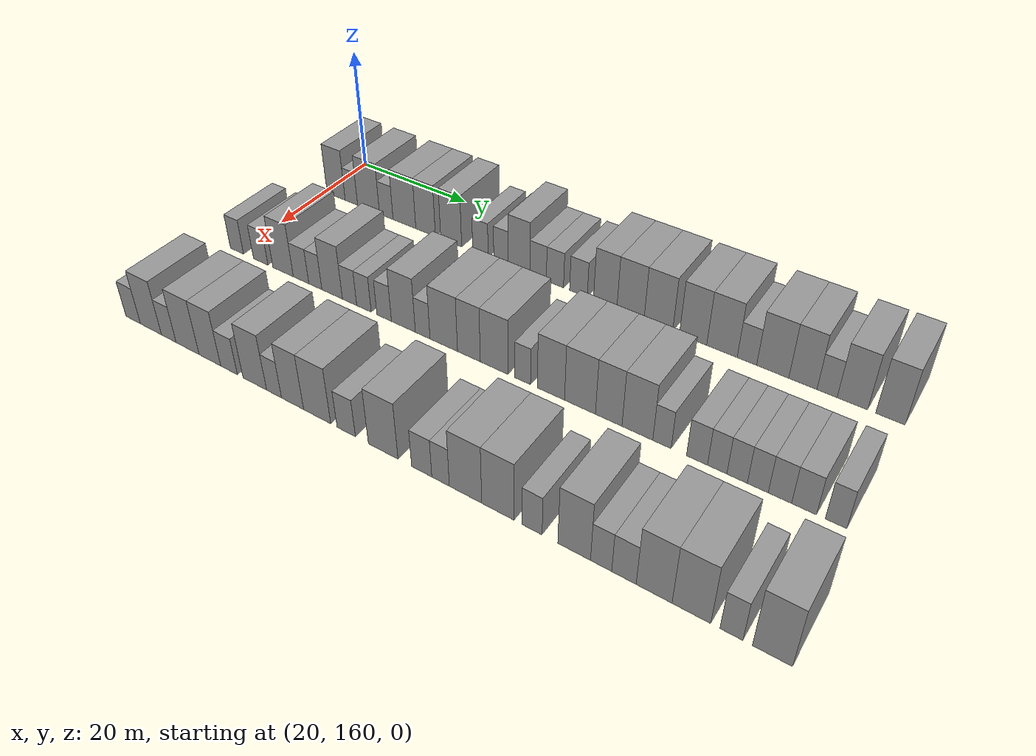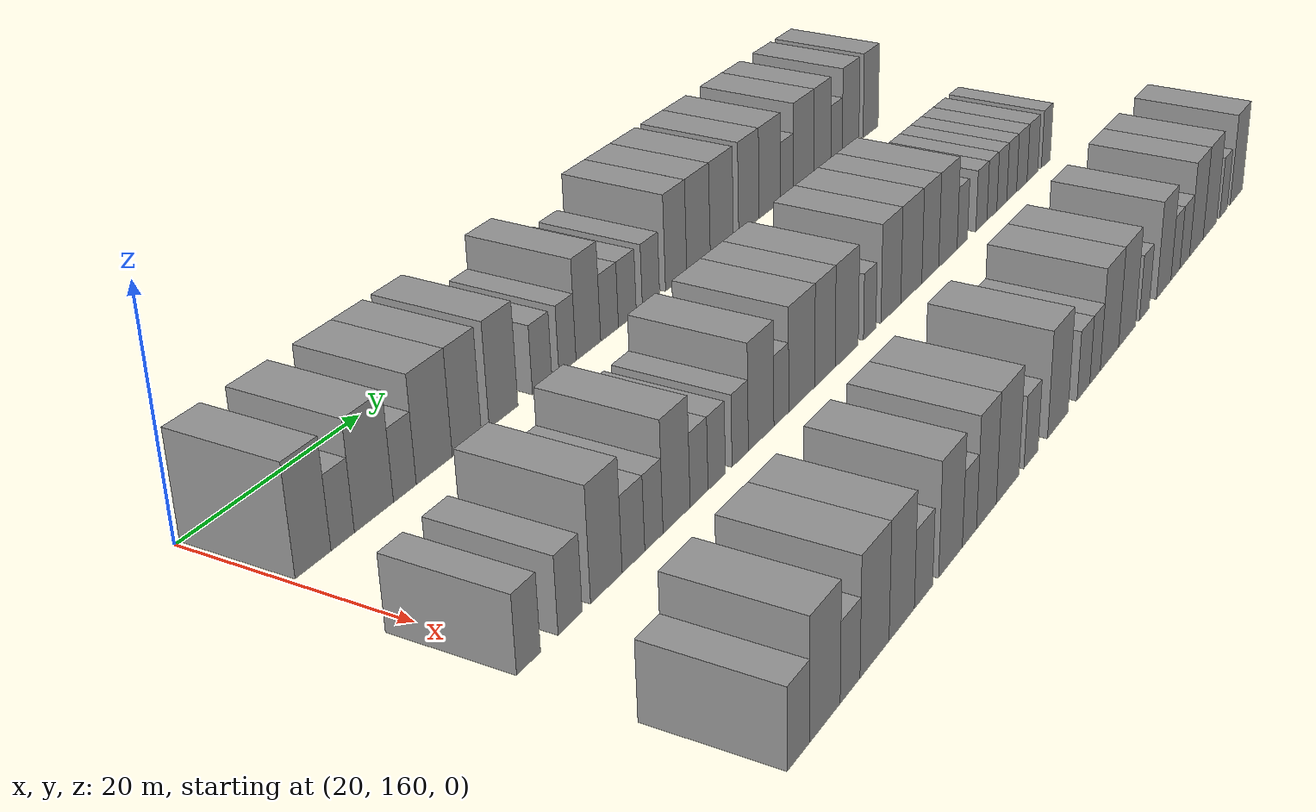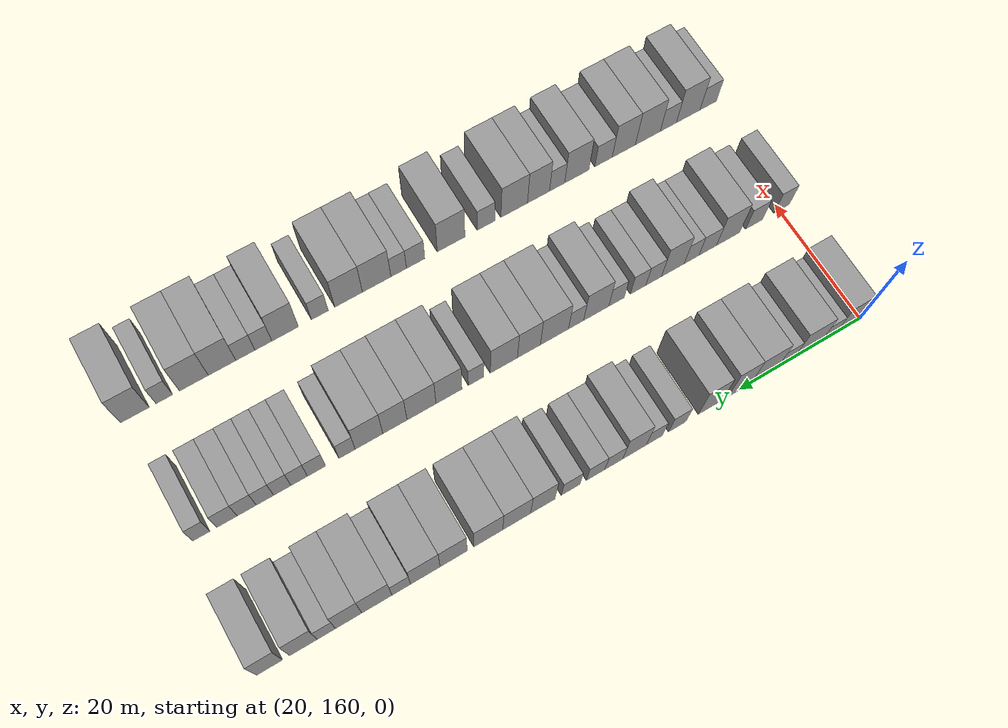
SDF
<sdf version="1.6">
 <world name="default">
  <model name="building_129">
   <static>1</static>
   <pose>25.0000 162.2864 0 0.000000 0.000000 0.000000</pose>
   <link name="link">
    <pose>0 0 4.50 0 0 0</pose>
    <collision name="collision"><geometry><box><size>10.0000 3.7345 9.0000</size></box></geometry></collision>
    <visual name="visual">
     <cast_shadows>0</cast_shadows>
     <geometry><box><size>10.0000 3.7345 9.0000</size></box></geometry>
     <material>
      <script>
       <uri>model://grey_wall/materials/scripts</uri>
       <uri>model://grey_wall/materials/textures</uri>
       <name>vrc/grey_wall</name>
      </script>
     </material>
    </visual>
   </link>
  </model>
  <model name="building_130">
   <static>1</static>
   <pose>25.0000 165.4136 0 0.000000 0.000000 0.000000</pose>
   <link name="link">
    <pose>0 0 3.00 0 0 0</pose>
    <collision name="collision"><geometry><box><size>10.0000 2.5200 6.0000</size></box></geometry></collision>
    <visual name="visual">
     <cast_shadows>0</cast_shadows>
     <geometry><box><size>10.0000 2.5200 6.0000</size></box></geometry>
     <material>
      <script>
       <uri>model://grey_wall/materials/scripts</uri>
       <uri>model://grey_wall/materials/textures</uri>
       <name>vrc/grey_wall</name>
      </script>
     </material>
    </visual>
   </link>
  </model>
  <model name="building_131">
   <static>1</static>
   <pose>25.0000 168.8662 0 0.000000 0.000000 0.000000</pose>
   <link name="link">
    <pose>0 0 4.50 0 0 0</pose>
    <collision name="collision"><geometry><box><size>10.0000 4.3852 9.0000</size></box></geometry></collision>
    <visual name="visual">
     <cast_shadows>0</cast_shadows>
     <geometry><box><size>10.0000 4.3852 9.0000</size></box></geometry>
     <material>
      <script>
       <uri>model://grey_wall/materials/scripts</uri>
       <uri>model://grey_wall/materials/textures</uri>
       <name>vrc/grey_wall</name>
      </script>
     </material>
    </visual>
   </link>
  </model>
  <model name="building_132">
   <static>1</static>
   <pose>25.0000 172.3889 0 0.000000 0.000000 0.000000</pose>
   <link name="link">
    <pose>0 0 3.00 0 0 0</pose>
    <collision name="collision"><geometry><box><size>10.0000 2.6602 6.0000</size></box></geometry></collision>
    <visual name="visual">
     <cast_shadows>0</cast_shadows>
     <geometry><box><size>10.0000 2.6602 6.0000</size></box></geometry>
     <material>
      <script>
       <uri>model://grey_wall/materials/scripts</uri>
       <uri>model://grey_wall/materials/textures</uri>
       <name>vrc/grey_wall</name>
      </script>
     </material>
    </visual>
   </link>
  </model>
  <model name="building_133">
   <static>1</static>
   <pose>25.0000 175.9090 0 0.000000 0.000000 0.000000</pose>
   <link name="link">
    <pose>0 0 4.50 0 0 0</pose>
    <collision name="collision"><geometry><box><size>10.0000 4.3799 9.0000</size></box></geometry></collision>
    <visual name="visual">
     <cast_shadows>0</cast_shadows>
     <geometry><box><size>10.0000 4.3799 9.0000</size></box></geometry>
     <material>
      <script>
       <uri>model://grey_wall/materials/scripts</uri>
       <uri>model://grey_wall/materials/textures</uri>
       <name>vrc/grey_wall</name>
      </script>
     </material>
    </visual>
   </link>
  </model>
  <model name="building_134">
   <static>1</static>
   <pose>25.0000 179.9458 0 0.000000 0.000000 0.000000</pose>
   <link name="link">
    <pose>0 0 4.50 0 0 0</pose>
    <collision name="collision"><geometry><box><size>10.0000 3.6938 9.0000</size></box></geometry></collision>
    <visual name="visual">
     <cast_shadows>0</cast_shadows>
     <geometry><box><size>10.0000 3.6938 9.0000</size></box></geometry>
     <material>
      <script>
       <uri>model://grey_wall/materials/scripts</uri>
       <uri>model://grey_wall/materials/textures</uri>
       <name>vrc/grey_wall</name>
      </script>
     </material>
    </visual>
   </link>
  </model>
  <model name="building_135">
   <static>1</static>
   <pose>25.0000 184.7124 0 0.000000 0.000000 0.000000</pose>
   <link name="link">
    <pose>0 0 4.50 0 0 0</pose>
    <collision name="collision"><geometry><box><size>10.0000 3.8392 9.0000</size></box></geometry></collision>
    <visual name="visual">
     <cast_shadows>0</cast_shadows>
     <geometry><box><size>10.0000 3.8392 9.0000</size></box></geometry>
     <material>
      <script>
       <uri>model://grey_wall/materials/scripts</uri>
       <uri>model://grey_wall/materials/textures</uri>
       <name>vrc/grey_wall</name>
      </script>
     </material>
    </visual>
   </link>
  </model>
  <model name="building_136">
   <static>1</static>
   <pose>25.0000 190.0033 0 0.000000 0.000000 0.000000</pose>
   <link name="link">
    <pose>0 0 3.00 0 0 0</pose>
    <collision name="collision"><geometry><box><size>10.0000 2.7427 6.0000</size></box></geometry></collision>
    <visual name="visual">
     <cast_shadows>0</cast_shadows>
     <geometry><box><size>10.0000 2.7427 6.0000</size></box></geometry>
     <material>
      <script>
       <uri>model://grey_wall/materials/scripts</uri>
       <uri>model://grey_wall/materials/textures</uri>
       <name>vrc/grey_wall</name>
      </script>
     </material>
    </visual>
   </link>
  </model>
  <model name="building_137">
   <static>1</static>
   <pose>25.0000 193.6274 0 0.000000 0.000000 0.000000</pose>
   <link name="link">
    <pose>0 0 3.00 0 0 0</pose>
    <collision name="collision"><geometry><box><size>10.0000 2.5055 6.0000</size></box></geometry></collision>
    <visual name="visual">
     <cast_shadows>0</cast_shadows>
     <geometry><box><size>10.0000 2.5055 6.0000</size></box></geometry>
     <material>
      <script>
       <uri>model://grey_wall/materials/scripts</uri>
       <uri>model://grey_wall/materials/textures</uri>
       <name>vrc/grey_wall</name>
      </script>
     </material>
    </visual>
   </link>
  </model>
  <model name="building_138">
   <static>1</static>
   <pose>25.0000 196.7386 0 0.000000 0.000000 0.000000</pose>
   <link name="link">
    <pose>0 0 4.50 0 0 0</pose>
    <collision name="collision"><geometry><box><size>10.0000 3.7170 9.0000</size></box></geometry></collision>
    <visual name="visual">
     <cast_shadows>0</cast_shadows>
     <geometry><box><size>10.0000 3.7170 9.0000</size></box></geometry>
     <material>
      <script>
       <uri>model://grey_wall/materials/scripts</uri>
       <uri>model://grey_wall/materials/textures</uri>
       <name>vrc/grey_wall</name>
      </script>
     </material>
    </visual>
   </link>
  </model>
  <model name="building_139">
   <static>1</static>
   <pose>25.0000 199.9825 0 0.000000 0.000000 0.000000</pose>
   <link name="link">
    <pose>0 0 3.00 0 0 0</pose>
    <collision name="collision"><geometry><box><size>10.0000 2.7708 6.0000</size></box></geometry></collision>
    <visual name="visual">
     <cast_shadows>0</cast_shadows>
     <geometry><box><size>10.0000 2.7708 6.0000</size></box></geometry>
     <material>
      <script>
       <uri>model://grey_wall/materials/scripts</uri>
       <uri>model://grey_wall/materials/textures</uri>
       <name>vrc/grey_wall</name>
      </script>
     </material>
    </visual>
   </link>
  </model>
  <model name="building_140">
   <static>1</static>
   <pose>25.0000 202.7918 0 0.000000 0.000000 0.000000</pose>
   <link name="link">
    <pose>0 0 3.00 0 0 0</pose>
    <collision name="collision"><geometry><box><size>10.0000 2.8478 6.0000</size></box></geometry></collision>
    <visual name="visual">
     <cast_shadows>0</cast_shadows>
     <geometry><box><size>10.0000 2.8478 6.0000</size></box></geometry>
     <material>
      <script>
       <uri>model://grey_wall/materials/scripts</uri>
       <uri>model://grey_wall/materials/textures</uri>
       <name>vrc/grey_wall</name>
      </script>
     </material>
    </visual>
   </link>
  </model>
  <model name="building_141">
   <static>1</static>
   <pose>25.0000 206.6423 0 0.000000 0.000000 0.000000</pose>
   <link name="link">
    <pose>0 0 3.00 0 0 0</pose>
    <collision name="collision"><geometry><box><size>10.0000 2.8532 6.0000</size></box></geometry></collision>
    <visual name="visual">
     <cast_shadows>0</cast_shadows>
     <geometry><box><size>10.0000 2.8532 6.0000</size></box></geometry>
     <material>
      <script>
       <uri>model://grey_wall/materials/scripts</uri>
       <uri>model://grey_wall/materials/textures</uri>
       <name>vrc/grey_wall</name>
      </script>
     </material>
    </visual>
   </link>
  </model>
  <model name="building_142">
   <static>1</static>
   <pose>25.0000 210.9130 0 0.000000 0.000000 0.000000</pose>
   <link name="link">
    <pose>0 0 4.50 0 0 0</pose>
    <collision name="collision"><geometry><box><size>10.0000 3.6882 9.0000</size></box></geometry></collision>
    <visual name="visual">
     <cast_shadows>0</cast_shadows>
     <geometry><box><size>10.0000 3.6882 9.0000</size></box></geometry>
     <material>
      <script>
       <uri>model://grey_wall/materials/scripts</uri>
       <uri>model://grey_wall/materials/textures</uri>
       <name>vrc/grey_wall</name>
      </script>
     </material>
    </visual>
   </link>
  </model>
  <model name="building_143">
   <static>1</static>
   <pose>25.0000 214.8537 0 0.000000 0.000000 0.000000</pose>
   <link name="link">
    <pose>0 0 4.50 0 0 0</pose>
    <collision name="collision"><geometry><box><size>10.0000 4.1931 9.0000</size></box></geometry></collision>
    <visual name="visual">
     <cast_shadows>0</cast_shadows>
     <geometry><box><size>10.0000 4.1931 9.0000</size></box></geometry>
     <material>
      <script>
       <uri>model://grey_wall/materials/scripts</uri>
       <uri>model://grey_wall/materials/textures</uri>
       <name>vrc/grey_wall</name>
      </script>
     </material>
    </visual>
   </link>
  </model>
  <model name="building_144">
   <static>1</static>
   <pose>25.0000 219.1016 0 0.000000 0.000000 0.000000</pose>
   <link name="link">
    <pose>0 0 4.50 0 0 0</pose>
    <collision name="collision"><geometry><box><size>10.0000 4.3026 9.0000</size></box></geometry></collision>
    <visual name="visual">
     <cast_shadows>0</cast_shadows>
     <geometry><box><size>10.0000 4.3026 9.0000</size></box></geometry>
     <material>
      <script>
       <uri>model://grey_wall/materials/scripts</uri>
       <uri>model://grey_wall/materials/textures</uri>
       <name>vrc/grey_wall</name>
      </script>
     </material>
    </visual>
   </link>
  </model>
  <model name="building_145">
   <static>1</static>
   <pose>25.0000 224.2383 0 0.000000 0.000000 0.000000</pose>
   <link name="link">
    <pose>0 0 4.50 0 0 0</pose>
    <collision name="collision"><geometry><box><size>10.0000 3.9708 9.0000</size></box></geometry></collision>
    <visual name="visual">
     <cast_shadows>0</cast_shadows>
     <geometry><box><size>10.0000 3.9708 9.0000</size></box></geometry>
     <material>
      <script>
       <uri>model://grey_wall/materials/scripts</uri>
       <uri>model://grey_wall/materials/textures</uri>
       <name>vrc/grey_wall</name>
      </script>
     </material>
    </visual>
   </link>
  </model>
  <model name="building_146">
   <static>1</static>
   <pose>25.0000 228.3854 0 0.000000 0.000000 0.000000</pose>
   <link name="link">
    <pose>0 0 4.50 0 0 0</pose>
    <collision name="collision"><geometry><box><size>10.0000 4.3234 9.0000</size></box></geometry></collision>
    <visual name="visual">
     <cast_shadows>0</cast_shadows>
     <geometry><box><size>10.0000 4.3234 9.0000</size></box></geometry>
     <material>
      <script>
       <uri>model://grey_wall/materials/scripts</uri>
       <uri>model://grey_wall/materials/textures</uri>
       <name>vrc/grey_wall</name>
      </script>
     </material>
    </visual>
   </link>
  </model>
  <model name="building_147">
   <static>1</static>
   <pose>25.0000 231.8959 0 0.000000 0.000000 0.000000</pose>
   <link name="link">
    <pose>0 0 3.00 0 0 0</pose>
    <collision name="collision"><geometry><box><size>10.0000 2.6977 6.0000</size></box></geometry></collision>
    <visual name="visual">
     <cast_shadows>0</cast_shadows>
     <geometry><box><size>10.0000 2.6977 6.0000</size></box></geometry>
     <material>
      <script>
       <uri>model://grey_wall/materials/scripts</uri>
       <uri>model://grey_wall/materials/textures</uri>
       <name>vrc/grey_wall</name>
      </script>
     </material>
    </visual>
   </link>
  </model>
  <model name="building_148">
   <static>1</static>
   <pose>25.0000 235.4217 0 0.000000 0.000000 0.000000</pose>
   <link name="link">
    <pose>0 0 4.50 0 0 0</pose>
    <collision name="collision"><geometry><box><size>10.0000 4.3541 9.0000</size></box></geometry></collision>
    <visual name="visual">
     <cast_shadows>0</cast_shadows>
     <geometry><box><size>10.0000 4.3541 9.0000</size></box></geometry>
     <material>
      <script>
       <uri>model://grey_wall/materials/scripts</uri>
       <uri>model://grey_wall/materials/textures</uri>
       <name>vrc/grey_wall</name>
      </script>
     </material>
    </visual>
   </link>
  </model>
  <model name="building_149">
   <static>1</static>
   <pose>25.0000 239.4622 0 0.000000 0.000000 0.000000</pose>
   <link name="link">
    <pose>0 0 4.50 0 0 0</pose>
    <collision name="collision"><geometry><box><size>10.0000 3.7268 9.0000</size></box></geometry></collision>
    <visual name="visual">
     <cast_shadows>0</cast_shadows>
     <geometry><box><size>10.0000 3.7268 9.0000</size></box></geometry>
     <material>
      <script>
       <uri>model://grey_wall/materials/scripts</uri>
       <uri>model://grey_wall/materials/textures</uri>
       <name>vrc/grey_wall</name>
      </script>
     </material>
    </visual>
   </link>
  </model>
  <model name="building_150">
   <static>1</static>
   <pose>25.0000 242.6299 0 0.000000 0.000000 0.000000</pose>
   <link name="link">
    <pose>0 0 3.00 0 0 0</pose>
    <collision name="collision"><geometry><box><size>10.0000 2.6086 6.0000</size></box></geometry></collision>
    <visual name="visual">
     <cast_shadows>0</cast_shadows>
     <geometry><box><size>10.0000 2.6086 6.0000</size></box></geometry>
     <material>
      <script>
       <uri>model://grey_wall/materials/scripts</uri>
       <uri>model://grey_wall/materials/textures</uri>
       <name>vrc/grey_wall</name>
      </script>
     </material>
    </visual>
   </link>
  </model>
  <model name="building_151">
   <static>1</static>
   <pose>25.0000 245.8676 0 0.000000 0.000000 0.000000</pose>
   <link name="link">
    <pose>0 0 4.50 0 0 0</pose>
    <collision name="collision"><geometry><box><size>10.0000 3.8668 9.0000</size></box></geometry></collision>
    <visual name="visual">
     <cast_shadows>0</cast_shadows>
     <geometry><box><size>10.0000 3.8668 9.0000</size></box></geometry>
     <material>
      <script>
       <uri>model://grey_wall/materials/scripts</uri>
       <uri>model://grey_wall/materials/textures</uri>
       <name>vrc/grey_wall</name>
      </script>
     </material>
    </visual>
   </link>
  </model>
  <model name="building_152">
   <static>1</static>
   <pose>25.0000 250.6155 0 0.000000 0.000000 0.000000</pose>
   <link name="link">
    <pose>0 0 4.50 0 0 0</pose>
    <collision name="collision"><geometry><box><size>10.0000 3.6291 9.0000</size></box></geometry></collision>
    <visual name="visual">
     <cast_shadows>0</cast_shadows>
     <geometry><box><size>10.0000 3.6291 9.0000</size></box></geometry>
     <material>
      <script>
       <uri>model://grey_wall/materials/scripts</uri>
       <uri>model://grey_wall/materials/textures</uri>
       <name>vrc/grey_wall</name>
      </script>
     </material>
    </visual>
   </link>
  </model>
  <model name="building_293">
   <static>1</static>
   <pose>44.0000 159.6439 0 0.000000 0.000000 0.000000</pose>
   <link name="link">
    <pose>0 0 3.00 0 0 0</pose>
    <collision name="collision"><geometry><box><size>10.0000 2.6679 6.0000</size></box></geometry></collision>
    <visual name="visual">
     <cast_shadows>0</cast_shadows>
     <geometry><box><size>10.0000 2.6679 6.0000</size></box></geometry>
     <material>
      <script>
       <uri>model://grey_wall/materials/scripts</uri>
       <uri>model://grey_wall/materials/textures</uri>
       <name>vrc/grey_wall</name>
      </script>
     </material>
    </visual>
   </link>
  </model>
  <model name="building_294">
   <static>1</static>
   <pose>44.0000 164.4047 0 0.000000 0.000000 0.000000</pose>
   <link name="link">
    <pose>0 0 3.00 0 0 0</pose>
    <collision name="collision"><geometry><box><size>10.0000 2.8537 6.0000</size></box></geometry></collision>
    <visual name="visual">
     <cast_shadows>0</cast_shadows>
     <geometry><box><size>10.0000 2.8537 6.0000</size></box></geometry>
     <material>
      <script>
       <uri>model://grey_wall/materials/scripts</uri>
       <uri>model://grey_wall/materials/textures</uri>
       <name>vrc/grey_wall</name>
      </script>
     </material>
    </visual>
   </link>
  </model>
  <model name="building_295">
   <static>1</static>
   <pose>44.0000 168.8029 0 0.000000 0.000000 0.000000</pose>
   <link name="link">
    <pose>0 0 4.50 0 0 0</pose>
    <collision name="collision"><geometry><box><size>10.0000 3.9427 9.0000</size></box></geometry></collision>
    <visual name="visual">
     <cast_shadows>0</cast_shadows>
     <geometry><box><size>10.0000 3.9427 9.0000</size></box></geometry>
     <material>
      <script>
       <uri>model://grey_wall/materials/scripts</uri>
       <uri>model://grey_wall/materials/textures</uri>
       <name>vrc/grey_wall</name>
      </script>
     </material>
    </visual>
   </link>
  </model>
  <model name="building_296">
   <static>1</static>
   <pose>44.0000 172.2439 0 0.000000 0.000000 0.000000</pose>
   <link name="link">
    <pose>0 0 3.00 0 0 0</pose>
    <collision name="collision"><geometry><box><size>10.0000 2.9393 6.0000</size></box></geometry></collision>
    <visual name="visual">
     <cast_shadows>0</cast_shadows>
     <geometry><box><size>10.0000 2.9393 6.0000</size></box></geometry>
     <material>
      <script>
       <uri>model://grey_wall/materials/scripts</uri>
       <uri>model://grey_wall/materials/textures</uri>
       <name>vrc/grey_wall</name>
      </script>
     </material>
    </visual>
   </link>
  </model>
  <model name="building_297">
   <static>1</static>
   <pose>44.0000 174.9356 0 0.000000 0.000000 0.000000</pose>
   <link name="link">
    <pose>0 0 3.00 0 0 0</pose>
    <collision name="collision"><geometry><box><size>10.0000 2.4442 6.0000</size></box></geometry></collision>
    <visual name="visual">
     <cast_shadows>0</cast_shadows>
     <geometry><box><size>10.0000 2.4442 6.0000</size></box></geometry>
     <material>
      <script>
       <uri>model://grey_wall/materials/scripts</uri>
       <uri>model://grey_wall/materials/textures</uri>
       <name>vrc/grey_wall</name>
      </script>
     </material>
    </visual>
   </link>
  </model>
  <model name="building_298">
   <static>1</static>
   <pose>44.0000 178.0419 0 0.000000 0.000000 0.000000</pose>
   <link name="link">
    <pose>0 0 4.50 0 0 0</pose>
    <collision name="collision"><geometry><box><size>10.0000 3.7684 9.0000</size></box></geometry></collision>
    <visual name="visual">
     <cast_shadows>0</cast_shadows>
     <geometry><box><size>10.0000 3.7684 9.0000</size></box></geometry>
     <material>
      <script>
       <uri>model://grey_wall/materials/scripts</uri>
       <uri>model://grey_wall/materials/textures</uri>
       <name>vrc/grey_wall</name>
      </script>
     </material>
    </visual>
   </link>
  </model>
  <model name="building_299">
   <static>1</static>
   <pose>44.0000 181.2138 0 0.000000 0.000000 0.000000</pose>
   <link name="link">
    <pose>0 0 3.00 0 0 0</pose>
    <collision name="collision"><geometry><box><size>10.0000 2.5755 6.0000</size></box></geometry></collision>
    <visual name="visual">
     <cast_shadows>0</cast_shadows>
     <geometry><box><size>10.0000 2.5755 6.0000</size></box></geometry>
     <material>
      <script>
       <uri>model://grey_wall/materials/scripts</uri>
       <uri>model://grey_wall/materials/textures</uri>
       <name>vrc/grey_wall</name>
      </script>
     </material>
    </visual>
   </link>
  </model>
  <model name="building_300">
   <static>1</static>
   <pose>44.0000 183.7836 0 0.000000 0.000000 0.000000</pose>
   <link name="link">
    <pose>0 0 3.00 0 0 0</pose>
    <collision name="collision"><geometry><box><size>10.0000 2.5640 6.0000</size></box></geometry></collision>
    <visual name="visual">
     <cast_shadows>0</cast_shadows>
     <geometry><box><size>10.0000 2.5640 6.0000</size></box></geometry>
     <material>
      <script>
       <uri>model://grey_wall/materials/scripts</uri>
       <uri>model://grey_wall/materials/textures</uri>
       <name>vrc/grey_wall</name>
      </script>
     </material>
    </visual>
   </link>
  </model>
  <model name="building_301">
   <static>1</static>
   <pose>44.0000 187.3251 0 0.000000 0.000000 0.000000</pose>
   <link name="link">
    <pose>0 0 3.00 0 0 0</pose>
    <collision name="collision"><geometry><box><size>10.0000 2.5191 6.0000</size></box></geometry></collision>
    <visual name="visual">
     <cast_shadows>0</cast_shadows>
     <geometry><box><size>10.0000 2.5191 6.0000</size></box></geometry>
     <material>
      <script>
       <uri>model://grey_wall/materials/scripts</uri>
       <uri>model://grey_wall/materials/textures</uri>
       <name>vrc/grey_wall</name>
      </script>
     </material>
    </visual>
   </link>
  </model>
  <model name="building_302">
   <static>1</static>
   <pose>44.0000 190.6198 0 0.000000 0.000000 0.000000</pose>
   <link name="link">
    <pose>0 0 4.50 0 0 0</pose>
    <collision name="collision"><geometry><box><size>10.0000 4.0704 9.0000</size></box></geometry></collision>
    <visual name="visual">
     <cast_shadows>0</cast_shadows>
     <geometry><box><size>10.0000 4.0704 9.0000</size></box></geometry>
     <material>
      <script>
       <uri>model://grey_wall/materials/scripts</uri>
       <uri>model://grey_wall/materials/textures</uri>
       <name>vrc/grey_wall</name>
      </script>
     </material>
    </visual>
   </link>
  </model>
  <model name="building_303">
   <static>1</static>
   <pose>44.0000 193.8757 0 0.000000 0.000000 0.000000</pose>
   <link name="link">
    <pose>0 0 3.00 0 0 0</pose>
    <collision name="collision"><geometry><box><size>10.0000 2.4413 6.0000</size></box></geometry></collision>
    <visual name="visual">
     <cast_shadows>0</cast_shadows>
     <geometry><box><size>10.0000 2.4413 6.0000</size></box></geometry>
     <material>
      <script>
       <uri>model://grey_wall/materials/scripts</uri>
       <uri>model://grey_wall/materials/textures</uri>
       <name>vrc/grey_wall</name>
      </script>
     </material>
    </visual>
   </link>
  </model>
  <model name="building_304">
   <static>1</static>
   <pose>44.0000 197.3410 0 0.000000 0.000000 0.000000</pose>
   <link name="link">
    <pose>0 0 4.50 0 0 0</pose>
    <collision name="collision"><geometry><box><size>10.0000 4.4893 9.0000</size></box></geometry></collision>
    <visual name="visual">
     <cast_shadows>0</cast_shadows>
     <geometry><box><size>10.0000 4.4893 9.0000</size></box></geometry>
     <material>
      <script>
       <uri>model://grey_wall/materials/scripts</uri>
       <uri>model://grey_wall/materials/textures</uri>
       <name>vrc/grey_wall</name>
      </script>
     </material>
    </visual>
   </link>
  </model>
  <model name="building_305">
   <static>1</static>
   <pose>44.0000 201.3980 0 0.000000 0.000000 0.000000</pose>
   <link name="link">
    <pose>0 0 4.50 0 0 0</pose>
    <collision name="collision"><geometry><box><size>10.0000 3.6245 9.0000</size></box></geometry></collision>
    <visual name="visual">
     <cast_shadows>0</cast_shadows>
     <geometry><box><size>10.0000 3.6245 9.0000</size></box></geometry>
     <material>
      <script>
       <uri>model://grey_wall/materials/scripts</uri>
       <uri>model://grey_wall/materials/textures</uri>
       <name>vrc/grey_wall</name>
      </script>
     </material>
    </visual>
   </link>
  </model>
  <model name="building_306">
   <static>1</static>
   <pose>44.0000 205.3498 0 0.000000 0.000000 0.000000</pose>
   <link name="link">
    <pose>0 0 4.50 0 0 0</pose>
    <collision name="collision"><geometry><box><size>10.0000 4.2791 9.0000</size></box></geometry></collision>
    <visual name="visual">
     <cast_shadows>0</cast_shadows>
     <geometry><box><size>10.0000 4.2791 9.0000</size></box></geometry>
     <material>
      <script>
       <uri>model://grey_wall/materials/scripts</uri>
       <uri>model://grey_wall/materials/textures</uri>
       <name>vrc/grey_wall</name>
      </script>
     </material>
    </visual>
   </link>
  </model>
  <model name="building_307">
   <static>1</static>
   <pose>44.0000 209.6932 0 0.000000 0.000000 0.000000</pose>
   <link name="link">
    <pose>0 0 3.00 0 0 0</pose>
    <collision name="collision"><geometry><box><size>10.0000 2.4078 6.0000</size></box></geometry></collision>
    <visual name="visual">
     <cast_shadows>0</cast_shadows>
     <geometry><box><size>10.0000 2.4078 6.0000</size></box></geometry>
     <material>
      <script>
       <uri>model://grey_wall/materials/scripts</uri>
       <uri>model://grey_wall/materials/textures</uri>
       <name>vrc/grey_wall</name>
      </script>
     </material>
    </visual>
   </link>
  </model>
  <model name="building_308">
   <static>1</static>
   <pose>44.0000 213.8956 0 0.000000 0.000000 0.000000</pose>
   <link name="link">
    <pose>0 0 4.50 0 0 0</pose>
    <collision name="collision"><geometry><box><size>10.0000 3.9969 9.0000</size></box></geometry></collision>
    <visual name="visual">
     <cast_shadows>0</cast_shadows>
     <geometry><box><size>10.0000 3.9969 9.0000</size></box></geometry>
     <material>
      <script>
       <uri>model://grey_wall/materials/scripts</uri>
       <uri>model://grey_wall/materials/textures</uri>
       <name>vrc/grey_wall</name>
      </script>
     </material>
    </visual>
   </link>
  </model>
  <model name="building_309">
   <static>1</static>
   <pose>44.0000 218.1007 0 0.000000 0.000000 0.000000</pose>
   <link name="link">
    <pose>0 0 4.50 0 0 0</pose>
    <collision name="collision"><geometry><box><size>10.0000 4.4133 9.0000</size></box></geometry></collision>
    <visual name="visual">
     <cast_shadows>0</cast_shadows>
     <geometry><box><size>10.0000 4.4133 9.0000</size></box></geometry>
     <material>
      <script>
       <uri>model://grey_wall/materials/scripts</uri>
       <uri>model://grey_wall/materials/textures</uri>
       <name>vrc/grey_wall</name>
      </script>
     </material>
    </visual>
   </link>
  </model>
  <model name="building_310">
   <static>1</static>
   <pose>44.0000 222.1472 0 0.000000 0.000000 0.000000</pose>
   <link name="link">
    <pose>0 0 4.50 0 0 0</pose>
    <collision name="collision"><geometry><box><size>10.0000 3.6796 9.0000</size></box></geometry></collision>
    <visual name="visual">
     <cast_shadows>0</cast_shadows>
     <geometry><box><size>10.0000 3.6796 9.0000</size></box></geometry>
     <material>
      <script>
       <uri>model://grey_wall/materials/scripts</uri>
       <uri>model://grey_wall/materials/textures</uri>
       <name>vrc/grey_wall</name>
      </script>
     </material>
    </visual>
   </link>
  </model>
  <model name="building_311">
   <static>1</static>
   <pose>44.0000 226.0698 0 0.000000 0.000000 0.000000</pose>
   <link name="link">
    <pose>0 0 4.50 0 0 0</pose>
    <collision name="collision"><geometry><box><size>10.0000 4.1657 9.0000</size></box></geometry></collision>
    <visual name="visual">
     <cast_shadows>0</cast_shadows>
     <geometry><box><size>10.0000 4.1657 9.0000</size></box></geometry>
     <material>
      <script>
       <uri>model://grey_wall/materials/scripts</uri>
       <uri>model://grey_wall/materials/textures</uri>
       <name>vrc/grey_wall</name>
      </script>
     </material>
    </visual>
   </link>
  </model>
  <model name="building_312">
   <static>1</static>
   <pose>44.0000 229.3638 0 0.000000 0.000000 0.000000</pose>
   <link name="link">
    <pose>0 0 3.00 0 0 0</pose>
    <collision name="collision"><geometry><box><size>10.0000 2.4222 6.0000</size></box></geometry></collision>
    <visual name="visual">
     <cast_shadows>0</cast_shadows>
     <geometry><box><size>10.0000 2.4222 6.0000</size></box></geometry>
     <material>
      <script>
       <uri>model://grey_wall/materials/scripts</uri>
       <uri>model://grey_wall/materials/textures</uri>
       <name>vrc/grey_wall</name>
      </script>
     </material>
    </visual>
   </link>
  </model>
  <model name="building_313">
   <static>1</static>
   <pose>44.0000 233.9124 0 0.000000 0.000000 0.000000</pose>
   <link name="link">
    <pose>0 0 3.00 0 0 0</pose>
    <collision name="collision"><geometry><box><size>10.0000 2.6751 6.0000</size></box></geometry></collision>
    <visual name="visual">
     <cast_shadows>0</cast_shadows>
     <geometry><box><size>10.0000 2.6751 6.0000</size></box></geometry>
     <material>
      <script>
       <uri>model://grey_wall/materials/scripts</uri>
       <uri>model://grey_wall/materials/textures</uri>
       <name>vrc/grey_wall</name>
      </script>
     </material>
    </visual>
   </link>
  </model>
  <model name="building_314">
   <static>1</static>
   <pose>44.0000 236.4684 0 0.000000 0.000000 0.000000</pose>
   <link name="link">
    <pose>0 0 3.00 0 0 0</pose>
    <collision name="collision"><geometry><box><size>10.0000 2.4369 6.0000</size></box></geometry></collision>
    <visual name="visual">
     <cast_shadows>0</cast_shadows>
     <geometry><box><size>10.0000 2.4369 6.0000</size></box></geometry>
     <material>
      <script>
       <uri>model://grey_wall/materials/scripts</uri>
       <uri>model://grey_wall/materials/textures</uri>
       <name>vrc/grey_wall</name>
      </script>
     </material>
    </visual>
   </link>
  </model>
  <model name="building_315">
   <static>1</static>
   <pose>44.0000 238.9477 0 0.000000 0.000000 0.000000</pose>
   <link name="link">
    <pose>0 0 3.00 0 0 0</pose>
    <collision name="collision"><geometry><box><size>10.0000 2.5216 6.0000</size></box></geometry></collision>
    <visual name="visual">
     <cast_shadows>0</cast_shadows>
     <geometry><box><size>10.0000 2.5216 6.0000</size></box></geometry>
     <material>
      <script>
       <uri>model://grey_wall/materials/scripts</uri>
       <uri>model://grey_wall/materials/textures</uri>
       <name>vrc/grey_wall</name>
      </script>
     </material>
    </visual>
   </link>
  </model>
  <model name="building_316">
   <static>1</static>
   <pose>44.0000 241.4748 0 0.000000 0.000000 0.000000</pose>
   <link name="link">
    <pose>0 0 3.00 0 0 0</pose>
    <collision name="collision"><geometry><box><size>10.0000 2.5327 6.0000</size></box></geometry></collision>
    <visual name="visual">
     <cast_shadows>0</cast_shadows>
     <geometry><box><size>10.0000 2.5327 6.0000</size></box></geometry>
     <material>
      <script>
       <uri>model://grey_wall/materials/scripts</uri>
       <uri>model://grey_wall/materials/textures</uri>
       <name>vrc/grey_wall</name>
      </script>
     </material>
    </visual>
   </link>
  </model>
  <model name="building_317">
   <static>1</static>
   <pose>44.0000 244.1294 0 0.000000 0.000000 0.000000</pose>
   <link name="link">
    <pose>0 0 3.00 0 0 0</pose>
    <collision name="collision"><geometry><box><size>10.0000 2.7765 6.0000</size></box></geometry></collision>
    <visual name="visual">
     <cast_shadows>0</cast_shadows>
     <geometry><box><size>10.0000 2.7765 6.0000</size></box></geometry>
     <material>
      <script>
       <uri>model://grey_wall/materials/scripts</uri>
       <uri>model://grey_wall/materials/textures</uri>
       <name>vrc/grey_wall</name>
      </script>
     </material>
    </visual>
   </link>
  </model>
  <model name="building_318">
   <static>1</static>
   <pose>44.0000 246.9705 0 0.000000 0.000000 0.000000</pose>
   <link name="link">
    <pose>0 0 3.00 0 0 0</pose>
    <collision name="collision"><geometry><box><size>10.0000 2.9056 6.0000</size></box></geometry></collision>
    <visual name="visual">
     <cast_shadows>0</cast_shadows>
     <geometry><box><size>10.0000 2.9056 6.0000</size></box></geometry>
     <material>
      <script>
       <uri>model://grey_wall/materials/scripts</uri>
       <uri>model://grey_wall/materials/textures</uri>
       <name>vrc/grey_wall</name>
      </script>
     </material>
    </visual>
   </link>
  </model>
  <model name="building_319">
   <static>1</static>
   <pose>44.0000 250.6443 0 0.000000 0.000000 0.000000</pose>
   <link name="link">
    <pose>0 0 3.00 0 0 0</pose>
    <collision name="collision"><geometry><box><size>10.0000 2.4419 6.0000</size></box></geometry></collision>
    <visual name="visual">
     <cast_shadows>0</cast_shadows>
     <geometry><box><size>10.0000 2.4419 6.0000</size></box></geometry>
     <material>
      <script>
       <uri>model://grey_wall/materials/scripts</uri>
       <uri>model://grey_wall/materials/textures</uri>
       <name>vrc/grey_wall</name>
      </script>
     </material>
    </visual>
   </link>
  </model>
  <model name="building_472">
   <static>1</static>
   <pose>63.0000 159.2291 0 0.000000 0.000000 0.000000</pose>
   <link name="link">
    <pose>0 0 3.00 0 0 0</pose>
    <collision name="collision"><geometry><box><size>10.0000 2.8820 6.0000</size></box></geometry></collision>
    <visual name="visual">
     <cast_shadows>0</cast_shadows>
     <geometry><box><size>10.0000 2.8820 6.0000</size></box></geometry>
     <material>
      <script>
       <uri>model://grey_wall/materials/scripts</uri>
       <uri>model://grey_wall/materials/textures</uri>
       <name>vrc/grey_wall</name>
      </script>
     </material>
    </visual>
   </link>
  </model>
  <model name="building_473">
   <static>1</static>
   <pose>63.0000 162.7259 0 0.000000 0.000000 0.000000</pose>
   <link name="link">
    <pose>0 0 4.50 0 0 0</pose>
    <collision name="collision"><geometry><box><size>10.0000 4.1115 9.0000</size></box></geometry></collision>
    <visual name="visual">
     <cast_shadows>0</cast_shadows>
     <geometry><box><size>10.0000 4.1115 9.0000</size></box></geometry>
     <material>
      <script>
       <uri>model://grey_wall/materials/scripts</uri>
       <uri>model://grey_wall/materials/textures</uri>
       <name>vrc/grey_wall</name>
      </script>
     </material>
    </visual>
   </link>
  </model>
  <model name="building_474">
   <static>1</static>
   <pose>63.0000 166.1795 0 0.000000 0.000000 0.000000</pose>
   <link name="link">
    <pose>0 0 3.00 0 0 0</pose>
    <collision name="collision"><geometry><box><size>10.0000 2.7958 6.0000</size></box></geometry></collision>
    <visual name="visual">
     <cast_shadows>0</cast_shadows>
     <geometry><box><size>10.0000 2.7958 6.0000</size></box></geometry>
     <material>
      <script>
       <uri>model://grey_wall/materials/scripts</uri>
       <uri>model://grey_wall/materials/textures</uri>
       <name>vrc/grey_wall</name>
      </script>
     </material>
    </visual>
   </link>
  </model>
  <model name="building_475">
   <static>1</static>
   <pose>63.0000 169.7271 0 0.000000 0.000000 0.000000</pose>
   <link name="link">
    <pose>0 0 4.50 0 0 0</pose>
    <collision name="collision"><geometry><box><size>10.0000 4.2994 9.0000</size></box></geometry></collision>
    <visual name="visual">
     <cast_shadows>0</cast_shadows>
     <geometry><box><size>10.0000 4.2994 9.0000</size></box></geometry>
     <material>
      <script>
       <uri>model://grey_wall/materials/scripts</uri>
       <uri>model://grey_wall/materials/textures</uri>
       <name>vrc/grey_wall</name>
      </script>
     </material>
    </visual>
   </link>
  </model>
  <model name="building_476">
   <static>1</static>
   <pose>63.0000 173.8465 0 0.000000 0.000000 0.000000</pose>
   <link name="link">
    <pose>0 0 4.50 0 0 0</pose>
    <collision name="collision"><geometry><box><size>10.0000 3.9394 9.0000</size></box></geometry></collision>
    <visual name="visual">
     <cast_shadows>0</cast_shadows>
     <geometry><box><size>10.0000 3.9394 9.0000</size></box></geometry>
     <material>
      <script>
       <uri>model://grey_wall/materials/scripts</uri>
       <uri>model://grey_wall/materials/textures</uri>
       <name>vrc/grey_wall</name>
      </script>
     </material>
    </visual>
   </link>
  </model>
  <model name="building_477">
   <static>1</static>
   <pose>63.0000 177.2989 0 0.000000 0.000000 0.000000</pose>
   <link name="link">
    <pose>0 0 3.00 0 0 0</pose>
    <collision name="collision"><geometry><box><size>10.0000 2.9654 6.0000</size></box></geometry></collision>
    <visual name="visual">
     <cast_shadows>0</cast_shadows>
     <geometry><box><size>10.0000 2.9654 6.0000</size></box></geometry>
     <material>
      <script>
       <uri>model://grey_wall/materials/scripts</uri>
       <uri>model://grey_wall/materials/textures</uri>
       <name>vrc/grey_wall</name>
      </script>
     </material>
    </visual>
   </link>
  </model>
  <model name="building_478">
   <static>1</static>
   <pose>63.0000 181.8159 0 0.000000 0.000000 0.000000</pose>
   <link name="link">
    <pose>0 0 4.50 0 0 0</pose>
    <collision name="collision"><geometry><box><size>10.0000 4.0686 9.0000</size></box></geometry></collision>
    <visual name="visual">
     <cast_shadows>0</cast_shadows>
     <geometry><box><size>10.0000 4.0686 9.0000</size></box></geometry>
     <material>
      <script>
       <uri>model://grey_wall/materials/scripts</uri>
       <uri>model://grey_wall/materials/textures</uri>
       <name>vrc/grey_wall</name>
      </script>
     </material>
    </visual>
   </link>
  </model>
  <model name="building_479">
   <static>1</static>
   <pose>63.0000 185.1160 0 0.000000 0.000000 0.000000</pose>
   <link name="link">
    <pose>0 0 3.00 0 0 0</pose>
    <collision name="collision"><geometry><box><size>10.0000 2.5316 6.0000</size></box></geometry></collision>
    <visual name="visual">
     <cast_shadows>0</cast_shadows>
     <geometry><box><size>10.0000 2.5316 6.0000</size></box></geometry>
     <material>
      <script>
       <uri>model://grey_wall/materials/scripts</uri>
       <uri>model://grey_wall/materials/textures</uri>
       <name>vrc/grey_wall</name>
      </script>
     </material>
    </visual>
   </link>
  </model>
  <model name="building_480">
   <static>1</static>
   <pose>63.0000 188.2129 0 0.000000 0.000000 0.000000</pose>
   <link name="link">
    <pose>0 0 4.50 0 0 0</pose>
    <collision name="collision"><geometry><box><size>10.0000 3.6622 9.0000</size></box></geometry></collision>
    <visual name="visual">
     <cast_shadows>0</cast_shadows>
     <geometry><box><size>10.0000 3.6622 9.0000</size></box></geometry>
     <material>
      <script>
       <uri>model://grey_wall/materials/scripts</uri>
       <uri>model://grey_wall/materials/textures</uri>
       <name>vrc/grey_wall</name>
      </script>
     </material>
    </visual>
   </link>
  </model>
  <model name="building_481">
   <static>1</static>
   <pose>63.0000 192.2374 0 0.000000 0.000000 0.000000</pose>
   <link name="link">
    <pose>0 0 4.50 0 0 0</pose>
    <collision name="collision"><geometry><box><size>10.0000 4.3869 9.0000</size></box></geometry></collision>
    <visual name="visual">
     <cast_shadows>0</cast_shadows>
     <geometry><box><size>10.0000 4.3869 9.0000</size></box></geometry>
     <material>
      <script>
       <uri>model://grey_wall/materials/scripts</uri>
       <uri>model://grey_wall/materials/textures</uri>
       <name>vrc/grey_wall</name>
      </script>
     </material>
    </visual>
   </link>
  </model>
  <model name="building_482">
   <static>1</static>
   <pose>63.0000 196.8642 0 0.000000 0.000000 0.000000</pose>
   <link name="link">
    <pose>0 0 3.00 0 0 0</pose>
    <collision name="collision"><geometry><box><size>10.0000 2.8668 6.0000</size></box></geometry></collision>
    <visual name="visual">
     <cast_shadows>0</cast_shadows>
     <geometry><box><size>10.0000 2.8668 6.0000</size></box></geometry>
     <material>
      <script>
       <uri>model://grey_wall/materials/scripts</uri>
       <uri>model://grey_wall/materials/textures</uri>
       <name>vrc/grey_wall</name>
      </script>
     </material>
    </visual>
   </link>
  </model>
  <model name="building_483">
   <static>1</static>
   <pose>63.0000 202.5247 0 0.000000 0.000000 0.000000</pose>
   <link name="link">
    <pose>0 0 4.50 0 0 0</pose>
    <collision name="collision"><geometry><box><size>10.0000 4.4542 9.0000</size></box></geometry></collision>
    <visual name="visual">
     <cast_shadows>0</cast_shadows>
     <geometry><box><size>10.0000 4.4542 9.0000</size></box></geometry>
     <material>
      <script>
       <uri>model://grey_wall/materials/scripts</uri>
       <uri>model://grey_wall/materials/textures</uri>
       <name>vrc/grey_wall</name>
      </script>
     </material>
    </visual>
   </link>
  </model>
  <model name="building_484">
   <static>1</static>
   <pose>63.0000 208.2084 0 0.000000 0.000000 0.000000</pose>
   <link name="link">
    <pose>0 0 3.00 0 0 0</pose>
    <collision name="collision"><geometry><box><size>10.0000 2.9132 6.0000</size></box></geometry></collision>
    <visual name="visual">
     <cast_shadows>0</cast_shadows>
     <geometry><box><size>10.0000 2.9132 6.0000</size></box></geometry>
     <material>
      <script>
       <uri>model://grey_wall/materials/scripts</uri>
       <uri>model://grey_wall/materials/textures</uri>
       <name>vrc/grey_wall</name>
      </script>
     </material>
    </visual>
   </link>
  </model>
  <model name="building_485">
   <static>1</static>
   <pose>63.0000 210.9046 0 0.000000 0.000000 0.000000</pose>
   <link name="link">
    <pose>0 0 3.00 0 0 0</pose>
    <collision name="collision"><geometry><box><size>10.0000 2.4792 6.0000</size></box></geometry></collision>
    <visual name="visual">
     <cast_shadows>0</cast_shadows>
     <geometry><box><size>10.0000 2.4792 6.0000</size></box></geometry>
     <material>
      <script>
       <uri>model://grey_wall/materials/scripts</uri>
       <uri>model://grey_wall/materials/textures</uri>
       <name>vrc/grey_wall</name>
      </script>
     </material>
    </visual>
   </link>
  </model>
  <model name="building_486">
   <static>1</static>
   <pose>63.0000 214.3839 0 0.000000 0.000000 0.000000</pose>
   <link name="link">
    <pose>0 0 4.50 0 0 0</pose>
    <collision name="collision"><geometry><box><size>10.0000 4.4794 9.0000</size></box></geometry></collision>
    <visual name="visual">
     <cast_shadows>0</cast_shadows>
     <geometry><box><size>10.0000 4.4794 9.0000</size></box></geometry>
     <material>
      <script>
       <uri>model://grey_wall/materials/scripts</uri>
       <uri>model://grey_wall/materials/textures</uri>
       <name>vrc/grey_wall</name>
      </script>
     </material>
    </visual>
   </link>
  </model>
  <model name="building_487">
   <static>1</static>
   <pose>63.0000 218.7900 0 0.000000 0.000000 0.000000</pose>
   <link name="link">
    <pose>0 0 4.50 0 0 0</pose>
    <collision name="collision"><geometry><box><size>10.0000 4.3327 9.0000</size></box></geometry></collision>
    <visual name="visual">
     <cast_shadows>0</cast_shadows>
     <geometry><box><size>10.0000 4.3327 9.0000</size></box></geometry>
     <material>
      <script>
       <uri>model://grey_wall/materials/scripts</uri>
       <uri>model://grey_wall/materials/textures</uri>
       <name>vrc/grey_wall</name>
      </script>
     </material>
    </visual>
   </link>
  </model>
  <model name="building_488">
   <static>1</static>
   <pose>63.0000 223.2648 0 0.000000 0.000000 0.000000</pose>
   <link name="link">
    <pose>0 0 3.00 0 0 0</pose>
    <collision name="collision"><geometry><box><size>10.0000 2.6169 6.0000</size></box></geometry></collision>
    <visual name="visual">
     <cast_shadows>0</cast_shadows>
     <geometry><box><size>10.0000 2.6169 6.0000</size></box></geometry>
     <material>
      <script>
       <uri>model://grey_wall/materials/scripts</uri>
       <uri>model://grey_wall/materials/textures</uri>
       <name>vrc/grey_wall</name>
      </script>
     </material>
    </visual>
   </link>
  </model>
  <model name="building_489">
   <static>1</static>
   <pose>63.0000 228.6006 0 0.000000 0.000000 0.000000</pose>
   <link name="link">
    <pose>0 0 4.50 0 0 0</pose>
    <collision name="collision"><geometry><box><size>10.0000 4.0546 9.0000</size></box></geometry></collision>
    <visual name="visual">
     <cast_shadows>0</cast_shadows>
     <geometry><box><size>10.0000 4.0546 9.0000</size></box></geometry>
     <material>
      <script>
       <uri>model://grey_wall/materials/scripts</uri>
       <uri>model://grey_wall/materials/textures</uri>
       <name>vrc/grey_wall</name>
      </script>
     </material>
    </visual>
   </link>
  </model>
  <model name="building_490">
   <static>1</static>
   <pose>63.0000 231.9087 0 0.000000 0.000000 0.000000</pose>
   <link name="link">
    <pose>0 0 3.00 0 0 0</pose>
    <collision name="collision"><geometry><box><size>10.0000 2.5616 6.0000</size></box></geometry></collision>
    <visual name="visual">
     <cast_shadows>0</cast_shadows>
     <geometry><box><size>10.0000 2.5616 6.0000</size></box></geometry>
     <material>
      <script>
       <uri>model://grey_wall/materials/scripts</uri>
       <uri>model://grey_wall/materials/textures</uri>
       <name>vrc/grey_wall</name>
      </script>
     </material>
    </visual>
   </link>
  </model>
  <model name="building_491">
   <static>1</static>
   <pose>63.0000 234.6367 0 0.000000 0.000000 0.000000</pose>
   <link name="link">
    <pose>0 0 3.00 0 0 0</pose>
    <collision name="collision"><geometry><box><size>10.0000 2.8945 6.0000</size></box></geometry></collision>
    <visual name="visual">
     <cast_shadows>0</cast_shadows>
     <geometry><box><size>10.0000 2.8945 6.0000</size></box></geometry>
     <material>
      <script>
       <uri>model://grey_wall/materials/scripts</uri>
       <uri>model://grey_wall/materials/textures</uri>
       <name>vrc/grey_wall</name>
      </script>
     </material>
    </visual>
   </link>
  </model>
  <model name="building_492">
   <static>1</static>
   <pose>63.0000 238.1534 0 0.000000 0.000000 0.000000</pose>
   <link name="link">
    <pose>0 0 4.50 0 0 0</pose>
    <collision name="collision"><geometry><box><size>10.0000 4.1388 9.0000</size></box></geometry></collision>
    <visual name="visual">
     <cast_shadows>0</cast_shadows>
     <geometry><box><size>10.0000 4.1388 9.0000</size></box></geometry>
     <material>
      <script>
       <uri>model://grey_wall/materials/scripts</uri>
       <uri>model://grey_wall/materials/textures</uri>
       <name>vrc/grey_wall</name>
      </script>
     </material>
    </visual>
   </link>
  </model>
  <model name="building_493">
   <static>1</static>
   <pose>63.0000 242.3756 0 0.000000 0.000000 0.000000</pose>
   <link name="link">
    <pose>0 0 4.50 0 0 0</pose>
    <collision name="collision"><geometry><box><size>10.0000 4.3057 9.0000</size></box></geometry></collision>
    <visual name="visual">
     <cast_shadows>0</cast_shadows>
     <geometry><box><size>10.0000 4.3057 9.0000</size></box></geometry>
     <material>
      <script>
       <uri>model://grey_wall/materials/scripts</uri>
       <uri>model://grey_wall/materials/textures</uri>
       <name>vrc/grey_wall</name>
      </script>
     </material>
    </visual>
   </link>
  </model>
  <model name="building_494">
   <static>1</static>
   <pose>63.0000 246.7604 0 0.000000 0.000000 0.000000</pose>
   <link name="link">
    <pose>0 0 3.00 0 0 0</pose>
    <collision name="collision"><geometry><box><size>10.0000 2.4637 6.0000</size></box></geometry></collision>
    <visual name="visual">
     <cast_shadows>0</cast_shadows>
     <geometry><box><size>10.0000 2.4637 6.0000</size></box></geometry>
     <material>
      <script>
       <uri>model://grey_wall/materials/scripts</uri>
       <uri>model://grey_wall/materials/textures</uri>
       <name>vrc/grey_wall</name>
      </script>
     </material>
    </visual>
   </link>
  </model>
  <model name="building_495">
   <static>1</static>
   <pose>63.0000 251.0751 0 0.000000 0.000000 0.000000</pose>
   <link name="link">
    <pose>0 0 4.50 0 0 0</pose>
    <collision name="collision"><geometry><box><size>10.0000 4.1657 9.0000</size></box></geometry></collision>
    <visual name="visual">
     <cast_shadows>0</cast_shadows>
     <geometry><box><size>10.0000 4.1657 9.0000</size></box></geometry>
     <material>
      <script>
       <uri>model://grey_wall/materials/scripts</uri>
       <uri>model://grey_wall/materials/textures</uri>
       <name>vrc/grey_wall</name>
      </script>
     </material>
    </visual>
   </link>
  </model>
 </world>
</sdf>
